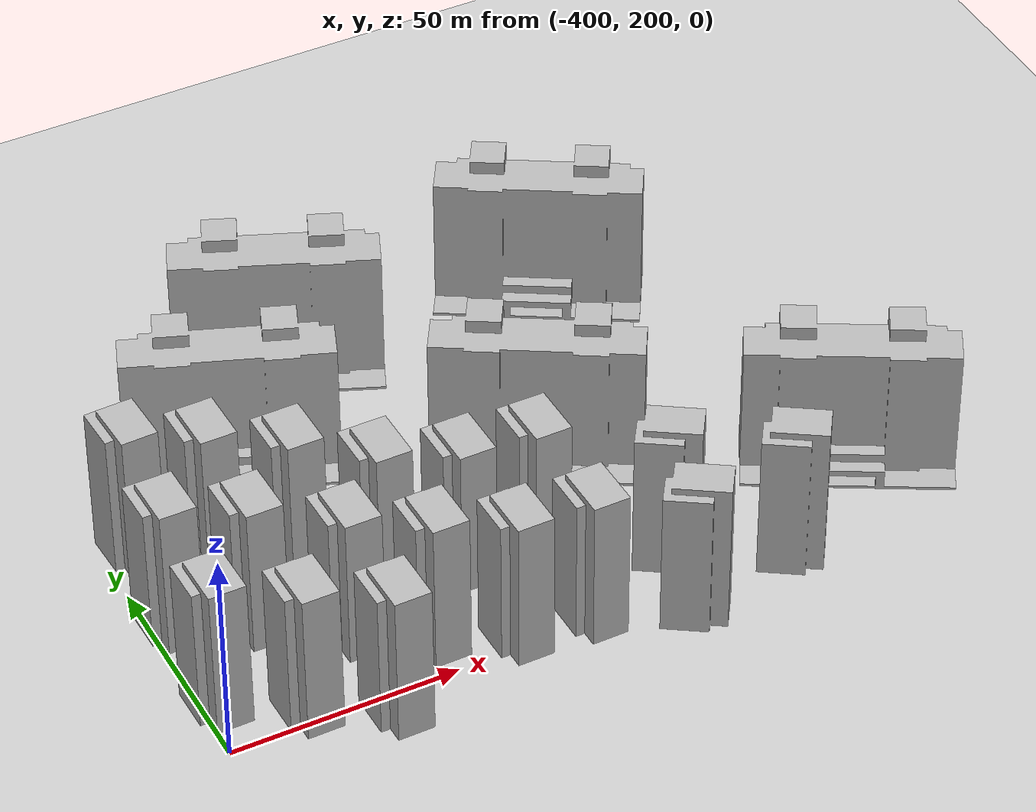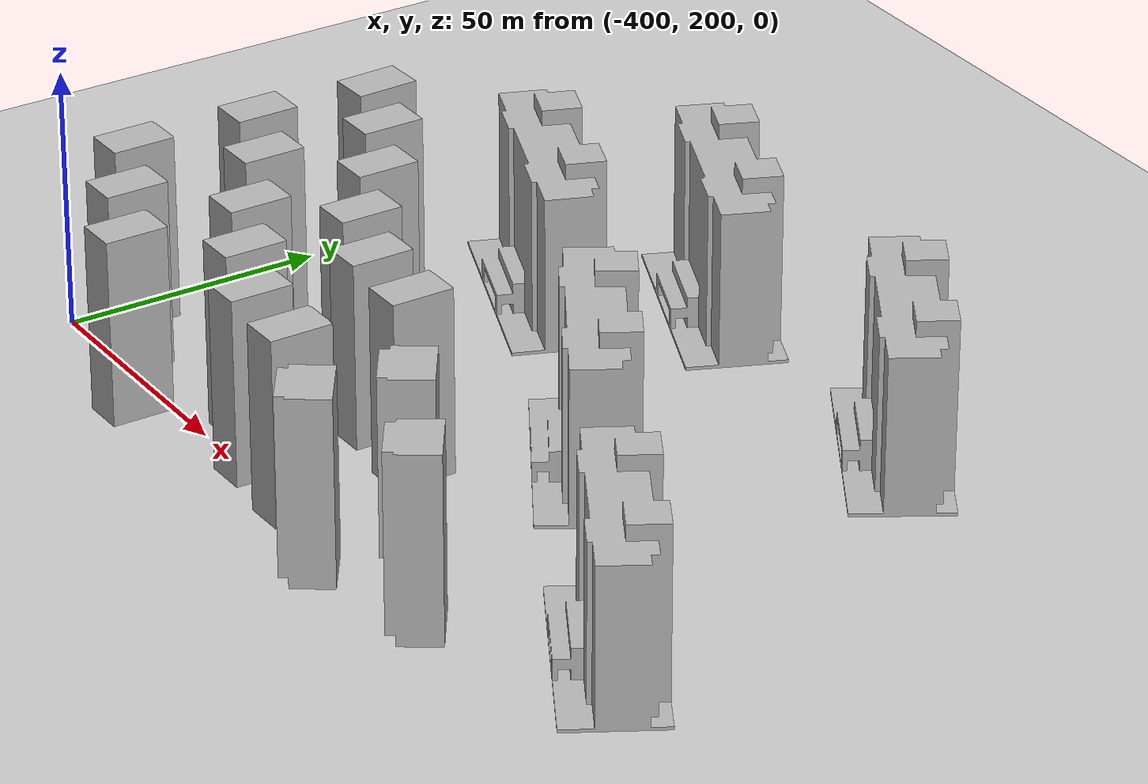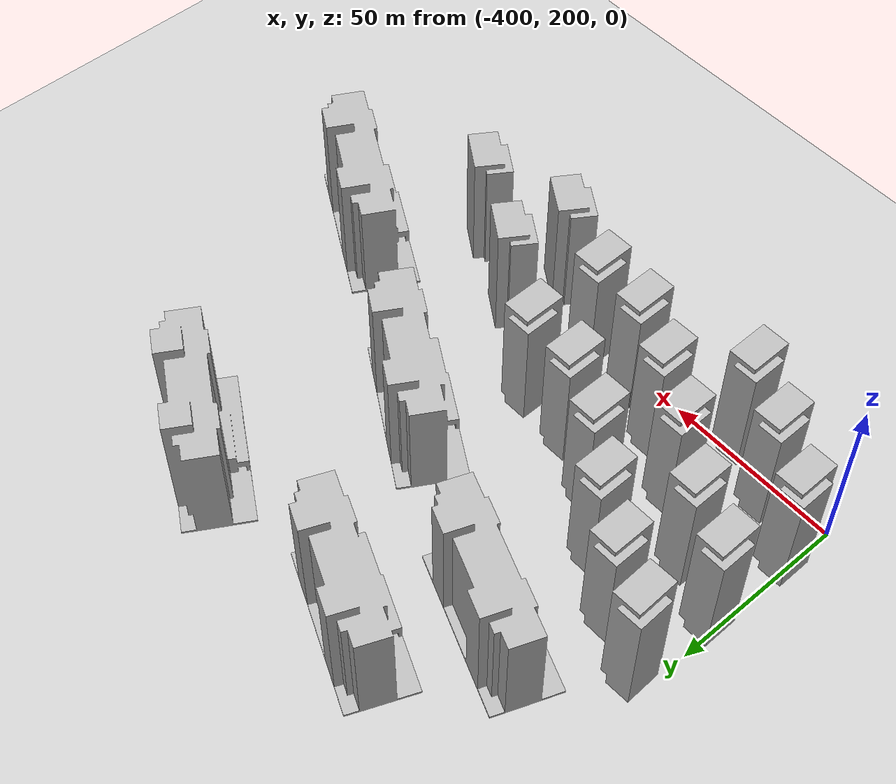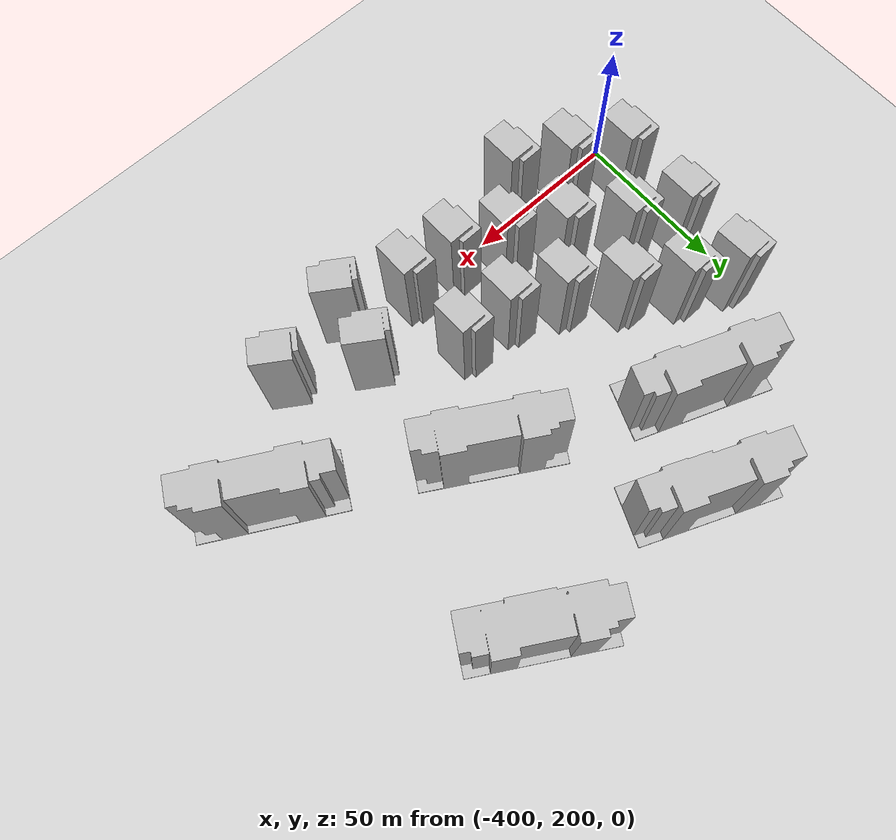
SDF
<sdf version="1.7">
 <world name="default">
  <model name="ground_plane">
   <static>1</static>
   <link name="link">
    <collision name="collision">
     <geometry><plane><normal>0 0 1</normal><size>100 100</size></plane></geometry>
     <surface><friction><ode><mu>100</mu><mu2>50</mu2></ode></friction></surface>
    </collision>
    <visual name="visual">
     <cast_shadows>0</cast_shadows>
     <geometry><plane><normal>0 0 1</normal><size>100 100</size></plane></geometry>
     <material>
      <script><uri>file://media/materials/scripts/gazebo.material</uri><name>Gazebo/Grey</name></script>
     </material>
    </visual>
   </link>
  </model>
  <model name="apartment0_clone_0">
   <static>1</static>
   <link name="link_0">
    <inertial>
     <mass>1</mass>
     <inertia>
      <ixx>0.166667</ixx>
      <ixy>0</ixy>
      <ixz>0</ixz>
      <iyy>0.166667</iyy>
      <iyz>0</iyz>
      <izz>0.166667</izz>
     </inertia>
    </inertial>
    <pose>0.000226 2e-06 0 0 -0 0</pose>
    <visual name="visual">
     <geometry>
      <mesh><uri>model://apartment0/scripts/apartment.dae</uri><scale>0.6 0.3 0.2</scale></mesh>
     </geometry>
     <material>
      <lighting>1</lighting>
      <script><uri>model://apartment0/scripts/building.jpg</uri><name>__default__</name></script>
      <shader type="pixel"/>
     </material>
    </visual>
    <collision name="collision">
     <geometry>
      <mesh><uri>model://apartment0/scripts/apartment.dae</uri><scale>0.6 0.3 0.2</scale></mesh>
     </geometry>
     <surface>
      <friction>
       <ode><mu>1</mu><mu2>1</mu2><fdir1>0 0 0</fdir1><slip1>0</slip1><slip2>0</slip2></ode>
       <torsional>
        <coefficient>1</coefficient>
        <patch_radius>0</patch_radius>
        <surface_radius>0</surface_radius>
        <use_patch_radius>1</use_patch_radius>
        <ode><slip>0</slip></ode>
       </torsional>
      </friction>
      <bounce><restitution_coefficient>0</restitution_coefficient><threshold>1e+06</threshold></bounce>
      <contact>
       <collide_without_contact>0</collide_without_contact>
       <collide_without_contact_bitmask>1</collide_without_contact_bitmask>
       <collide_bitmask>1</collide_bitmask>
       <ode>
        <soft_cfm>0</soft_cfm>
        <soft_erp>0.2</soft_erp>
        <kp>1e+13</kp>
        <kd>1</kd>
        <max_vel>0.01</max_vel>
        <min_depth>0</min_depth>
       </ode>
       <bullet>
        <split_impulse>1</split_impulse>
        <split_impulse_penetration_threshold>-0.01</split_impulse_penetration_threshold>
        <soft_cfm>0</soft_cfm>
        <soft_erp>0.2</soft_erp>
        <kp>1e+13</kp>
        <kd>1</kd>
       </bullet>
      </contact>
     </surface>
    </collision>
   </link>
   <static>0</static>
   <pose>-363.491 278.671 0.802359 0 0 -0.370451</pose>
  </model>
  <model name="apartment0_clone_1">
   <static>1</static>
   <link name="link_0">
    <inertial>
     <mass>1</mass>
     <inertia>
      <ixx>0.166667</ixx>
      <ixy>0</ixy>
      <ixz>0</ixz>
      <iyy>0.166667</iyy>
      <iyz>0</iyz>
      <izz>0.166667</izz>
     </inertia>
    </inertial>
    <pose>0.000226 2e-06 0 0 -0 0</pose>
    <visual name="visual">
     <geometry>
      <mesh><uri>model://apartment0/scripts/apartment.dae</uri><scale>0.6 0.3 0.2</scale></mesh>
     </geometry>
     <material>
      <lighting>1</lighting>
      <script><uri>model://apartment0/scripts/building.jpg</uri><name>__default__</name></script>
      <shader type="pixel"/>
     </material>
    </visual>
    <collision name="collision">
     <geometry>
      <mesh><uri>model://apartment0/scripts/apartment.dae</uri><scale>0.6 0.3 0.2</scale></mesh>
     </geometry>
     <surface>
      <friction>
       <ode><mu>1</mu><mu2>1</mu2><fdir1>0 0 0</fdir1><slip1>0</slip1><slip2>0</slip2></ode>
       <torsional>
        <coefficient>1</coefficient>
        <patch_radius>0</patch_radius>
        <surface_radius>0</surface_radius>
        <use_patch_radius>1</use_patch_radius>
        <ode><slip>0</slip></ode>
       </torsional>
      </friction>
      <bounce><restitution_coefficient>0</restitution_coefficient><threshold>1e+06</threshold></bounce>
      <contact>
       <collide_without_contact>0</collide_without_contact>
       <collide_without_contact_bitmask>1</collide_without_contact_bitmask>
       <collide_bitmask>1</collide_bitmask>
       <ode>
        <soft_cfm>0</soft_cfm>
        <soft_erp>0.2</soft_erp>
        <kp>1e+13</kp>
        <kd>1</kd>
        <max_vel>0.01</max_vel>
        <min_depth>0</min_depth>
       </ode>
       <bullet>
        <split_impulse>1</split_impulse>
        <split_impulse_penetration_threshold>-0.01</split_impulse_penetration_threshold>
        <soft_cfm>0</soft_cfm>
        <soft_erp>0.2</soft_erp>
        <kp>1e+13</kp>
        <kd>1</kd>
       </bullet>
      </contact>
     </surface>
    </collision>
   </link>
   <static>0</static>
   <pose>-341.755 302.564 0.802359 0 0 -0.400235</pose>
  </model>
  <model name="apartment0_clone_4">
   <static>1</static>
   <link name="link_0">
    <inertial>
     <mass>1</mass>
     <inertia>
      <ixx>0.166667</ixx>
      <ixy>0</ixy>
      <ixz>0</ixz>
      <iyy>0.166667</iyy>
      <iyz>0</iyz>
      <izz>0.166667</izz>
     </inertia>
    </inertial>
    <pose>0.000226 2e-06 0 0 -0 0</pose>
    <visual name="visual">
     <geometry>
      <mesh><uri>model://apartment0/scripts/apartment.dae</uri><scale>0.6 0.3 0.2</scale></mesh>
     </geometry>
     <material>
      <lighting>1</lighting>
      <script><uri>model://apartment0/scripts/building.jpg</uri><name>__default__</name></script>
      <shader type="pixel"/>
     </material>
    </visual>
    <collision name="collision">
     <geometry>
      <mesh><uri>model://apartment0/scripts/apartment.dae</uri><scale>0.6 0.3 0.2</scale></mesh>
     </geometry>
     <surface>
      <friction>
       <ode><mu>1</mu><mu2>1</mu2><fdir1>0 0 0</fdir1><slip1>0</slip1><slip2>0</slip2></ode>
       <torsional>
        <coefficient>1</coefficient>
        <patch_radius>0</patch_radius>
        <surface_radius>0</surface_radius>
        <use_patch_radius>1</use_patch_radius>
        <ode><slip>0</slip></ode>
       </torsional>
      </friction>
      <bounce><restitution_coefficient>0</restitution_coefficient><threshold>1e+06</threshold></bounce>
      <contact>
       <collide_without_contact>0</collide_without_contact>
       <collide_without_contact_bitmask>1</collide_without_contact_bitmask>
       <collide_bitmask>1</collide_bitmask>
       <ode>
        <soft_cfm>0</soft_cfm>
        <soft_erp>0.2</soft_erp>
        <kp>1e+13</kp>
        <kd>1</kd>
        <max_vel>0.01</max_vel>
        <min_depth>0</min_depth>
       </ode>
       <bullet>
        <split_impulse>1</split_impulse>
        <split_impulse_penetration_threshold>-0.01</split_impulse_penetration_threshold>
        <soft_cfm>0</soft_cfm>
        <soft_erp>0.2</soft_erp>
        <kp>1e+13</kp>
        <kd>1</kd>
       </bullet>
      </contact>
     </surface>
    </collision>
   </link>
   <static>0</static>
   <pose>-280.409 299.182 0.802359 0 0 -0.537389</pose>
  </model>
  <model name="apartment0_clone">
   <static>1</static>
   <link name="link_0">
    <inertial>
     <mass>1</mass>
     <inertia>
      <ixx>0.166667</ixx>
      <ixy>0</ixy>
      <ixz>0</ixz>
      <iyy>0.166667</iyy>
      <iyz>0</iyz>
      <izz>0.166667</izz>
     </inertia>
    </inertial>
    <pose>0.000226 2e-06 0 0 -0 0</pose>
    <visual name="visual">
     <geometry>
      <mesh><uri>model://apartment0/scripts/apartment.dae</uri><scale>0.6 0.3 0.2</scale></mesh>
     </geometry>
     <material>
      <lighting>1</lighting>
      <script><uri>model://apartment0/scripts/building.jpg</uri><name>__default__</name></script>
      <shader type="pixel"/>
     </material>
    </visual>
    <collision name="collision">
     <geometry>
      <mesh><uri>model://apartment0/scripts/apartment.dae</uri><scale>0.6 0.3 0.2</scale></mesh>
     </geometry>
     <surface>
      <friction>
       <ode><mu>1</mu><mu2>1</mu2><fdir1>0 0 0</fdir1><slip1>0</slip1><slip2>0</slip2></ode>
       <torsional>
        <coefficient>1</coefficient>
        <patch_radius>0</patch_radius>
        <surface_radius>0</surface_radius>
        <use_patch_radius>1</use_patch_radius>
        <ode><slip>0</slip></ode>
       </torsional>
      </friction>
      <bounce><restitution_coefficient>0</restitution_coefficient><threshold>1e+06</threshold></bounce>
      <contact>
       <collide_without_contact>0</collide_without_contact>
       <collide_without_contact_bitmask>1</collide_without_contact_bitmask>
       <collide_bitmask>1</collide_bitmask>
       <ode>
        <soft_cfm>0</soft_cfm>
        <soft_erp>0.2</soft_erp>
        <kp>1e+13</kp>
        <kd>1</kd>
        <max_vel>0.01</max_vel>
        <min_depth>0</min_depth>
       </ode>
       <bullet>
        <split_impulse>1</split_impulse>
        <split_impulse_penetration_threshold>-0.01</split_impulse_penetration_threshold>
        <soft_cfm>0</soft_cfm>
        <soft_erp>0.2</soft_erp>
        <kp>1e+13</kp>
        <kd>1</kd>
       </bullet>
      </contact>
     </surface>
    </collision>
   </link>
   <static>0</static>
   <pose>-248.904 220.04 0.802359 0 0 -0.510299</pose>
  </model>
  <model name="apartment1_1_clone_clone_2_clone_5_clone_4_clone_4_clone">
   <static>1</static>
   <link name="link_0">
    <inertial>
     <mass>1</mass>
     <inertia>
      <ixx>0.166667</ixx>
      <ixy>0</ixy>
      <ixz>0</ixz>
      <iyy>0.166667</iyy>
      <iyz>0</iyz>
      <izz>0.166667</izz>
     </inertia>
    </inertial>
    <pose>1e-06 -0 0 0 -0 0</pose>
    <visual name="visual">
     <geometry>
      <mesh><uri>model://apartment1/scripts/apartment1.dae</uri><scale>0.2 0.2 0.3</scale></mesh>
     </geometry>
     <material>
      <lighting>1</lighting>
      <script><uri>model://apartment1/scripts/apartment1.jpg</uri><name>__default__</name></script>
      <shader type="pixel"/>
     </material>
    </visual>
    <collision name="collision">
     <geometry>
      <mesh><uri>model://apartment1/scripts/apartment1.dae</uri><scale>0.2 0.2 0.3</scale></mesh>
     </geometry>
     <surface>
      <friction>
       <ode><mu>1</mu><mu2>1</mu2><fdir1>0 0 0</fdir1><slip1>0</slip1><slip2>0</slip2></ode>
       <torsional>
        <coefficient>1</coefficient>
        <patch_radius>0</patch_radius>
        <surface_radius>0</surface_radius>
        <use_patch_radius>1</use_patch_radius>
        <ode><slip>0</slip></ode>
       </torsional>
      </friction>
      <bounce><restitution_coefficient>0</restitution_coefficient><threshold>1e+06</threshold></bounce>
      <contact>
       <collide_without_contact>0</collide_without_contact>
       <collide_without_contact_bitmask>1</collide_without_contact_bitmask>
       <collide_bitmask>1</collide_bitmask>
       <ode>
        <soft_cfm>0</soft_cfm>
        <soft_erp>0.2</soft_erp>
        <kp>1e+13</kp>
        <kd>1</kd>
        <max_vel>0.01</max_vel>
        <min_depth>0</min_depth>
       </ode>
       <bullet>
        <split_impulse>1</split_impulse>
        <split_impulse_penetration_threshold>-0.01</split_impulse_penetration_threshold>
        <soft_cfm>0</soft_cfm>
        <soft_erp>0.2</soft_erp>
        <kp>1e+13</kp>
        <kd>1</kd>
       </bullet>
      </contact>
     </surface>
    </collision>
   </link>
   <static>0</static>
   <pose>-393.151 260.765 0 0 -0 0.036729</pose>
  </model>
  <model name="apartment1_1_clone_clone_2_clone_5_clone_4_clone_4_clone_clone">
   <static>1</static>
   <link name="link_0">
    <inertial>
     <mass>1</mass>
     <inertia>
      <ixx>0.166667</ixx>
      <ixy>0</ixy>
      <ixz>0</ixz>
      <iyy>0.166667</iyy>
      <iyz>0</iyz>
      <izz>0.166667</izz>
     </inertia>
    </inertial>
    <pose>1e-06 -0 0 0 -0 0</pose>
    <visual name="visual">
     <geometry>
      <mesh><uri>model://apartment1/scripts/apartment1.dae</uri><scale>0.2 0.2 0.3</scale></mesh>
     </geometry>
     <material>
      <lighting>1</lighting>
      <script><uri>model://apartment1/scripts/apartment1.jpg</uri><name>__default__</name></script>
      <shader type="pixel"/>
     </material>
    </visual>
    <collision name="collision">
     <geometry>
      <mesh><uri>model://apartment1/scripts/apartment1.dae</uri><scale>0.2 0.2 0.3</scale></mesh>
     </geometry>
     <surface>
      <friction>
       <ode><mu>1</mu><mu2>1</mu2><fdir1>0 0 0</fdir1><slip1>0</slip1><slip2>0</slip2></ode>
       <torsional>
        <coefficient>1</coefficient>
        <patch_radius>0</patch_radius>
        <surface_radius>0</surface_radius>
        <use_patch_radius>1</use_patch_radius>
        <ode><slip>0</slip></ode>
       </torsional>
      </friction>
      <bounce><restitution_coefficient>0</restitution_coefficient><threshold>1e+06</threshold></bounce>
      <contact>
       <collide_without_contact>0</collide_without_contact>
       <collide_without_contact_bitmask>1</collide_without_contact_bitmask>
       <collide_bitmask>1</collide_bitmask>
       <ode>
        <soft_cfm>0</soft_cfm>
        <soft_erp>0.2</soft_erp>
        <kp>1e+13</kp>
        <kd>1</kd>
        <max_vel>0.01</max_vel>
        <min_depth>0</min_depth>
       </ode>
       <bullet>
        <split_impulse>1</split_impulse>
        <split_impulse_penetration_threshold>-0.01</split_impulse_penetration_threshold>
        <soft_cfm>0</soft_cfm>
        <soft_erp>0.2</soft_erp>
        <kp>1e+13</kp>
        <kd>1</kd>
       </bullet>
      </contact>
     </surface>
    </collision>
   </link>
   <static>0</static>
   <pose>-395.285 236.969 0 0 -0 0.008849</pose>
  </model>
  <model name="apartment1_1_clone_clone_2_clone_5_clone_4_clone_4_clone_clone_0">
   <static>1</static>
   <link name="link_0">
    <inertial>
     <mass>1</mass>
     <inertia>
      <ixx>0.166667</ixx>
      <ixy>0</ixy>
      <ixz>0</ixz>
      <iyy>0.166667</iyy>
      <iyz>0</iyz>
      <izz>0.166667</izz>
     </inertia>
    </inertial>
    <pose>1e-06 -0 0 0 -0 0</pose>
    <visual name="visual">
     <geometry>
      <mesh><uri>model://apartment1/scripts/apartment1.dae</uri><scale>0.2 0.2 0.3</scale></mesh>
     </geometry>
     <material>
      <lighting>1</lighting>
      <script><uri>model://apartment1/scripts/apartment1.jpg</uri><name>__default__</name></script>
      <shader type="pixel"/>
     </material>
    </visual>
    <collision name="collision">
     <geometry>
      <mesh><uri>model://apartment1/scripts/apartment1.dae</uri><scale>0.2 0.2 0.3</scale></mesh>
     </geometry>
     <surface>
      <friction>
       <ode><mu>1</mu><mu2>1</mu2><fdir1>0 0 0</fdir1><slip1>0</slip1><slip2>0</slip2></ode>
       <torsional>
        <coefficient>1</coefficient>
        <patch_radius>0</patch_radius>
        <surface_radius>0</surface_radius>
        <use_patch_radius>1</use_patch_radius>
        <ode><slip>0</slip></ode>
       </torsional>
      </friction>
      <bounce><restitution_coefficient>0</restitution_coefficient><threshold>1e+06</threshold></bounce>
      <contact>
       <collide_without_contact>0</collide_without_contact>
       <collide_without_contact_bitmask>1</collide_without_contact_bitmask>
       <collide_bitmask>1</collide_bitmask>
       <ode>
        <soft_cfm>0</soft_cfm>
        <soft_erp>0.2</soft_erp>
        <kp>1e+13</kp>
        <kd>1</kd>
        <max_vel>0.01</max_vel>
        <min_depth>0</min_depth>
       </ode>
       <bullet>
        <split_impulse>1</split_impulse>
        <split_impulse_penetration_threshold>-0.01</split_impulse_penetration_threshold>
        <soft_cfm>0</soft_cfm>
        <soft_erp>0.2</soft_erp>
        <kp>1e+13</kp>
        <kd>1</kd>
       </bullet>
      </contact>
     </surface>
    </collision>
   </link>
   <static>0</static>
   <pose>-396.085 211.967 0 0 -0 0.008849</pose>
  </model>
  <model name="apartment1_1_clone_clone_2_clone_5_clone_4_clone_4_clone_clone_1">
   <static>1</static>
   <link name="link_0">
    <inertial>
     <mass>1</mass>
     <inertia>
      <ixx>0.166667</ixx>
      <ixy>0</ixy>
      <ixz>0</ixz>
      <iyy>0.166667</iyy>
      <iyz>0</iyz>
      <izz>0.166667</izz>
     </inertia>
    </inertial>
    <pose>1e-06 -0 0 0 -0 0</pose>
    <visual name="visual">
     <geometry>
      <mesh><uri>model://apartment1/scripts/apartment1.dae</uri><scale>0.2 0.2 0.3</scale></mesh>
     </geometry>
     <material>
      <lighting>1</lighting>
      <script><uri>model://apartment1/scripts/apartment1.jpg</uri><name>__default__</name></script>
      <shader type="pixel"/>
     </material>
    </visual>
    <collision name="collision">
     <geometry>
      <mesh><uri>model://apartment1/scripts/apartment1.dae</uri><scale>0.2 0.2 0.3</scale></mesh>
     </geometry>
     <surface>
      <friction>
       <ode><mu>1</mu><mu2>1</mu2><fdir1>0 0 0</fdir1><slip1>0</slip1><slip2>0</slip2></ode>
       <torsional>
        <coefficient>1</coefficient>
        <patch_radius>0</patch_radius>
        <surface_radius>0</surface_radius>
        <use_patch_radius>1</use_patch_radius>
        <ode><slip>0</slip></ode>
       </torsional>
      </friction>
      <bounce><restitution_coefficient>0</restitution_coefficient><threshold>1e+06</threshold></bounce>
      <contact>
       <collide_without_contact>0</collide_without_contact>
       <collide_without_contact_bitmask>1</collide_without_contact_bitmask>
       <collide_bitmask>1</collide_bitmask>
       <ode>
        <soft_cfm>0</soft_cfm>
        <soft_erp>0.2</soft_erp>
        <kp>1e+13</kp>
        <kd>1</kd>
        <max_vel>0.01</max_vel>
        <min_depth>0</min_depth>
       </ode>
       <bullet>
        <split_impulse>1</split_impulse>
        <split_impulse_penetration_threshold>-0.01</split_impulse_penetration_threshold>
        <soft_cfm>0</soft_cfm>
        <soft_erp>0.2</soft_erp>
        <kp>1e+13</kp>
        <kd>1</kd>
       </bullet>
      </contact>
     </surface>
    </collision>
   </link>
   <static>0</static>
   <pose>-379.013 253.689 0 0 -0 0.008849</pose>
  </model>
  <model name="apartment1_1_clone_clone_2_clone_5_clone_4_clone_4_clone_clone_1_clone">
   <static>1</static>
   <link name="link_0">
    <inertial>
     <mass>1</mass>
     <inertia>
      <ixx>0.166667</ixx>
      <ixy>0</ixy>
      <ixz>0</ixz>
      <iyy>0.166667</iyy>
      <iyz>0</iyz>
      <izz>0.166667</izz>
     </inertia>
    </inertial>
    <pose>1e-06 -0 0 0 -0 0</pose>
    <visual name="visual">
     <geometry>
      <mesh><uri>model://apartment1/scripts/apartment1.dae</uri><scale>0.2 0.2 0.3</scale></mesh>
     </geometry>
     <material>
      <lighting>1</lighting>
      <script><uri>model://apartment1/scripts/apartment1.jpg</uri><name>__default__</name></script>
      <shader type="pixel"/>
     </material>
    </visual>
    <collision name="collision">
     <geometry>
      <mesh><uri>model://apartment1/scripts/apartment1.dae</uri><scale>0.2 0.2 0.3</scale></mesh>
     </geometry>
     <surface>
      <friction>
       <ode><mu>1</mu><mu2>1</mu2><fdir1>0 0 0</fdir1><slip1>0</slip1><slip2>0</slip2></ode>
       <torsional>
        <coefficient>1</coefficient>
        <patch_radius>0</patch_radius>
        <surface_radius>0</surface_radius>
        <use_patch_radius>1</use_patch_radius>
        <ode><slip>0</slip></ode>
       </torsional>
      </friction>
      <bounce><restitution_coefficient>0</restitution_coefficient><threshold>1e+06</threshold></bounce>
      <contact>
       <collide_without_contact>0</collide_without_contact>
       <collide_without_contact_bitmask>1</collide_without_contact_bitmask>
       <collide_bitmask>1</collide_bitmask>
       <ode>
        <soft_cfm>0</soft_cfm>
        <soft_erp>0.2</soft_erp>
        <kp>1e+13</kp>
        <kd>1</kd>
        <max_vel>0.01</max_vel>
        <min_depth>0</min_depth>
       </ode>
       <bullet>
        <split_impulse>1</split_impulse>
        <split_impulse_penetration_threshold>-0.01</split_impulse_penetration_threshold>
        <soft_cfm>0</soft_cfm>
        <soft_erp>0.2</soft_erp>
        <kp>1e+13</kp>
        <kd>1</kd>
       </bullet>
      </contact>
     </surface>
    </collision>
   </link>
   <static>0</static>
   <pose>-380.093 229.665 0 0 -0 0.008849</pose>
  </model>
  <model name="apartment1_1_clone_clone_2_clone_5_clone_4_clone_4_clone_clone_1_clone_0">
   <static>1</static>
   <link name="link_0">
    <inertial>
     <mass>1</mass>
     <inertia>
      <ixx>0.166667</ixx>
      <ixy>0</ixy>
      <ixz>0</ixz>
      <iyy>0.166667</iyy>
      <iyz>0</iyz>
      <izz>0.166667</izz>
     </inertia>
    </inertial>
    <pose>1e-06 -0 0 0 -0 0</pose>
    <visual name="visual">
     <geometry>
      <mesh><uri>model://apartment1/scripts/apartment1.dae</uri><scale>0.2 0.2 0.3</scale></mesh>
     </geometry>
     <material>
      <lighting>1</lighting>
      <script><uri>model://apartment1/scripts/apartment1.jpg</uri><name>__default__</name></script>
      <shader type="pixel"/>
     </material>
    </visual>
    <collision name="collision">
     <geometry>
      <mesh><uri>model://apartment1/scripts/apartment1.dae</uri><scale>0.2 0.2 0.3</scale></mesh>
     </geometry>
     <surface>
      <friction>
       <ode><mu>1</mu><mu2>1</mu2><fdir1>0 0 0</fdir1><slip1>0</slip1><slip2>0</slip2></ode>
       <torsional>
        <coefficient>1</coefficient>
        <patch_radius>0</patch_radius>
        <surface_radius>0</surface_radius>
        <use_patch_radius>1</use_patch_radius>
        <ode><slip>0</slip></ode>
       </torsional>
      </friction>
      <bounce><restitution_coefficient>0</restitution_coefficient><threshold>1e+06</threshold></bounce>
      <contact>
       <collide_without_contact>0</collide_without_contact>
       <collide_without_contact_bitmask>1</collide_without_contact_bitmask>
       <collide_bitmask>1</collide_bitmask>
       <ode>
        <soft_cfm>0</soft_cfm>
        <soft_erp>0.2</soft_erp>
        <kp>1e+13</kp>
        <kd>1</kd>
        <max_vel>0.01</max_vel>
        <min_depth>0</min_depth>
       </ode>
       <bullet>
        <split_impulse>1</split_impulse>
        <split_impulse_penetration_threshold>-0.01</split_impulse_penetration_threshold>
        <soft_cfm>0</soft_cfm>
        <soft_erp>0.2</soft_erp>
        <kp>1e+13</kp>
        <kd>1</kd>
       </bullet>
      </contact>
     </surface>
    </collision>
   </link>
   <static>0</static>
   <pose>-380.949 202.447 0 0 -0 0.008849</pose>
  </model>
  <model name="apartment1_1_clone_clone_2_clone_5_clone_4_clone_4_clone_clone_1_clone_1">
   <static>1</static>
   <link name="link_0">
    <inertial>
     <mass>1</mass>
     <inertia>
      <ixx>0.166667</ixx>
      <ixy>0</ixy>
      <ixz>0</ixz>
      <iyy>0.166667</iyy>
      <iyz>0</iyz>
      <izz>0.166667</izz>
     </inertia>
    </inertial>
    <pose>1e-06 -0 0 0 -0 0</pose>
    <visual name="visual">
     <geometry>
      <mesh><uri>model://apartment1/scripts/apartment1.dae</uri><scale>0.2 0.2 0.3</scale></mesh>
     </geometry>
     <material>
      <lighting>1</lighting>
      <script><uri>model://apartment1/scripts/apartment1.jpg</uri><name>__default__</name></script>
      <shader type="pixel"/>
     </material>
    </visual>
    <collision name="collision">
     <geometry>
      <mesh><uri>model://apartment1/scripts/apartment1.dae</uri><scale>0.2 0.2 0.3</scale></mesh>
     </geometry>
     <surface>
      <friction>
       <ode><mu>1</mu><mu2>1</mu2><fdir1>0 0 0</fdir1><slip1>0</slip1><slip2>0</slip2></ode>
       <torsional>
        <coefficient>1</coefficient>
        <patch_radius>0</patch_radius>
        <surface_radius>0</surface_radius>
        <use_patch_radius>1</use_patch_radius>
        <ode><slip>0</slip></ode>
       </torsional>
      </friction>
      <bounce><restitution_coefficient>0</restitution_coefficient><threshold>1e+06</threshold></bounce>
      <contact>
       <collide_without_contact>0</collide_without_contact>
       <collide_without_contact_bitmask>1</collide_without_contact_bitmask>
       <collide_bitmask>1</collide_bitmask>
       <ode>
        <soft_cfm>0</soft_cfm>
        <soft_erp>0.2</soft_erp>
        <kp>1e+13</kp>
        <kd>1</kd>
        <max_vel>0.01</max_vel>
        <min_depth>0</min_depth>
       </ode>
       <bullet>
        <split_impulse>1</split_impulse>
        <split_impulse_penetration_threshold>-0.01</split_impulse_penetration_threshold>
        <soft_cfm>0</soft_cfm>
        <soft_erp>0.2</soft_erp>
        <kp>1e+13</kp>
        <kd>1</kd>
       </bullet>
      </contact>
     </surface>
    </collision>
   </link>
   <static>0</static>
   <pose>-364.488 244.044 0 0 -0 0.008849</pose>
  </model>
  <model name="apartment1_1_clone_clone_2_clone_5_clone_4_clone_4_clone_clone_1_clone_2">
   <static>1</static>
   <link name="link_0">
    <inertial>
     <mass>1</mass>
     <inertia>
      <ixx>0.166667</ixx>
      <ixy>0</ixy>
      <ixz>0</ixz>
      <iyy>0.166667</iyy>
      <iyz>0</iyz>
      <izz>0.166667</izz>
     </inertia>
    </inertial>
    <pose>1e-06 -0 0 0 -0 0</pose>
    <visual name="visual">
     <geometry>
      <mesh><uri>model://apartment1/scripts/apartment1.dae</uri><scale>0.2 0.2 0.3</scale></mesh>
     </geometry>
     <material>
      <lighting>1</lighting>
      <script><uri>model://apartment1/scripts/apartment1.jpg</uri><name>__default__</name></script>
      <shader type="pixel"/>
     </material>
    </visual>
    <collision name="collision">
     <geometry>
      <mesh><uri>model://apartment1/scripts/apartment1.dae</uri><scale>0.2 0.2 0.3</scale></mesh>
     </geometry>
     <surface>
      <friction>
       <ode><mu>1</mu><mu2>1</mu2><fdir1>0 0 0</fdir1><slip1>0</slip1><slip2>0</slip2></ode>
       <torsional>
        <coefficient>1</coefficient>
        <patch_radius>0</patch_radius>
        <surface_radius>0</surface_radius>
        <use_patch_radius>1</use_patch_radius>
        <ode><slip>0</slip></ode>
       </torsional>
      </friction>
      <bounce><restitution_coefficient>0</restitution_coefficient><threshold>1e+06</threshold></bounce>
      <contact>
       <collide_without_contact>0</collide_without_contact>
       <collide_without_contact_bitmask>1</collide_without_contact_bitmask>
       <collide_bitmask>1</collide_bitmask>
       <ode>
        <soft_cfm>0</soft_cfm>
        <soft_erp>0.2</soft_erp>
        <kp>1e+13</kp>
        <kd>1</kd>
        <max_vel>0.01</max_vel>
        <min_depth>0</min_depth>
       </ode>
       <bullet>
        <split_impulse>1</split_impulse>
        <split_impulse_penetration_threshold>-0.01</split_impulse_penetration_threshold>
        <soft_cfm>0</soft_cfm>
        <soft_erp>0.2</soft_erp>
        <kp>1e+13</kp>
        <kd>1</kd>
       </bullet>
      </contact>
     </surface>
    </collision>
   </link>
   <static>0</static>
   <pose>-364.394 218.011 0 0 -0 0.008849</pose>
  </model>
  <model name="apartment1_1_clone_clone_2_clone_5_clone_4_clone_4_clone_clone_1_clone_3">
   <static>1</static>
   <link name="link_0">
    <inertial>
     <mass>1</mass>
     <inertia>
      <ixx>0.166667</ixx>
      <ixy>0</ixy>
      <ixz>0</ixz>
      <iyy>0.166667</iyy>
      <iyz>0</iyz>
      <izz>0.166667</izz>
     </inertia>
    </inertial>
    <pose>1e-06 -0 0 0 -0 0</pose>
    <visual name="visual">
     <geometry>
      <mesh><uri>model://apartment1/scripts/apartment1.dae</uri><scale>0.2 0.2 0.3</scale></mesh>
     </geometry>
     <material>
      <lighting>1</lighting>
      <script><uri>model://apartment1/scripts/apartment1.jpg</uri><name>__default__</name></script>
      <shader type="pixel"/>
     </material>
    </visual>
    <collision name="collision">
     <geometry>
      <mesh><uri>model://apartment1/scripts/apartment1.dae</uri><scale>0.2 0.2 0.3</scale></mesh>
     </geometry>
     <surface>
      <friction>
       <ode><mu>1</mu><mu2>1</mu2><fdir1>0 0 0</fdir1><slip1>0</slip1><slip2>0</slip2></ode>
       <torsional>
        <coefficient>1</coefficient>
        <patch_radius>0</patch_radius>
        <surface_radius>0</surface_radius>
        <use_patch_radius>1</use_patch_radius>
        <ode><slip>0</slip></ode>
       </torsional>
      </friction>
      <bounce><restitution_coefficient>0</restitution_coefficient><threshold>1e+06</threshold></bounce>
      <contact>
       <collide_without_contact>0</collide_without_contact>
       <collide_without_contact_bitmask>1</collide_without_contact_bitmask>
       <collide_bitmask>1</collide_bitmask>
       <ode>
        <soft_cfm>0</soft_cfm>
        <soft_erp>0.2</soft_erp>
        <kp>1e+13</kp>
        <kd>1</kd>
        <max_vel>0.01</max_vel>
        <min_depth>0</min_depth>
       </ode>
       <bullet>
        <split_impulse>1</split_impulse>
        <split_impulse_penetration_threshold>-0.01</split_impulse_penetration_threshold>
        <soft_cfm>0</soft_cfm>
        <soft_erp>0.2</soft_erp>
        <kp>1e+13</kp>
        <kd>1</kd>
       </bullet>
      </contact>
     </surface>
    </collision>
   </link>
   <static>0</static>
   <pose>-365.488 193.945 0 0 -0 0.008849</pose>
  </model>
  <model name="apartment1_1_clone_clone_2_clone_5_clone_4_clone_4_clone_clone_1_clone_5">
   <static>1</static>
   <link name="link_0">
    <inertial>
     <mass>1</mass>
     <inertia>
      <ixx>0.166667</ixx>
      <ixy>0</ixy>
      <ixz>0</ixz>
      <iyy>0.166667</iyy>
      <iyz>0</iyz>
      <izz>0.166667</izz>
     </inertia>
    </inertial>
    <pose>1e-06 -0 0 0 -0 0</pose>
    <visual name="visual">
     <geometry>
      <mesh><uri>model://apartment1/scripts/apartment1.dae</uri><scale>0.2 0.2 0.3</scale></mesh>
     </geometry>
     <material>
      <lighting>1</lighting>
      <script><uri>model://apartment1/scripts/apartment1.jpg</uri><name>__default__</name></script>
      <shader type="pixel"/>
     </material>
    </visual>
    <collision name="collision">
     <geometry>
      <mesh><uri>model://apartment1/scripts/apartment1.dae</uri><scale>0.2 0.2 0.3</scale></mesh>
     </geometry>
     <surface>
      <friction>
       <ode><mu>1</mu><mu2>1</mu2><fdir1>0 0 0</fdir1><slip1>0</slip1><slip2>0</slip2></ode>
       <torsional>
        <coefficient>1</coefficient>
        <patch_radius>0</patch_radius>
        <surface_radius>0</surface_radius>
        <use_patch_radius>1</use_patch_radius>
        <ode><slip>0</slip></ode>
       </torsional>
      </friction>
      <bounce><restitution_coefficient>0</restitution_coefficient><threshold>1e+06</threshold></bounce>
      <contact>
       <collide_without_contact>0</collide_without_contact>
       <collide_without_contact_bitmask>1</collide_without_contact_bitmask>
       <collide_bitmask>1</collide_bitmask>
       <ode>
        <soft_cfm>0</soft_cfm>
        <soft_erp>0.2</soft_erp>
        <kp>1e+13</kp>
        <kd>1</kd>
        <max_vel>0.01</max_vel>
        <min_depth>0</min_depth>
       </ode>
       <bullet>
        <split_impulse>1</split_impulse>
        <split_impulse_penetration_threshold>-0.01</split_impulse_penetration_threshold>
        <soft_cfm>0</soft_cfm>
        <soft_erp>0.2</soft_erp>
        <kp>1e+13</kp>
        <kd>1</kd>
       </bullet>
      </contact>
     </surface>
    </collision>
   </link>
   <static>0</static>
   <pose>-349.922 208.825 0 0 -0 0.008849</pose>
  </model>
  <model name="apartment1_1_clone_clone_2_clone_5_clone_4_clone_4_clone_clone_1_clone_6">
   <static>1</static>
   <link name="link_0">
    <inertial>
     <mass>1</mass>
     <inertia>
      <ixx>0.166667</ixx>
      <ixy>0</ixy>
      <ixz>0</ixz>
      <iyy>0.166667</iyy>
      <iyz>0</iyz>
      <izz>0.166667</izz>
     </inertia>
    </inertial>
    <pose>1e-06 -0 0 0 -0 0</pose>
    <visual name="visual">
     <geometry>
      <mesh><uri>model://apartment1/scripts/apartment1.dae</uri><scale>0.2 0.2 0.3</scale></mesh>
     </geometry>
     <material>
      <lighting>1</lighting>
      <script><uri>model://apartment1/scripts/apartment1.jpg</uri><name>__default__</name></script>
      <shader type="pixel"/>
     </material>
    </visual>
    <collision name="collision">
     <geometry>
      <mesh><uri>model://apartment1/scripts/apartment1.dae</uri><scale>0.2 0.2 0.3</scale></mesh>
     </geometry>
     <surface>
      <friction>
       <ode><mu>1</mu><mu2>1</mu2><fdir1>0 0 0</fdir1><slip1>0</slip1><slip2>0</slip2></ode>
       <torsional>
        <coefficient>1</coefficient>
        <patch_radius>0</patch_radius>
        <surface_radius>0</surface_radius>
        <use_patch_radius>1</use_patch_radius>
        <ode><slip>0</slip></ode>
       </torsional>
      </friction>
      <bounce><restitution_coefficient>0</restitution_coefficient><threshold>1e+06</threshold></bounce>
      <contact>
       <collide_without_contact>0</collide_without_contact>
       <collide_without_contact_bitmask>1</collide_without_contact_bitmask>
       <collide_bitmask>1</collide_bitmask>
       <ode>
        <soft_cfm>0</soft_cfm>
        <soft_erp>0.2</soft_erp>
        <kp>1e+13</kp>
        <kd>1</kd>
        <max_vel>0.01</max_vel>
        <min_depth>0</min_depth>
       </ode>
       <bullet>
        <split_impulse>1</split_impulse>
        <split_impulse_penetration_threshold>-0.01</split_impulse_penetration_threshold>
        <soft_cfm>0</soft_cfm>
        <soft_erp>0.2</soft_erp>
        <kp>1e+13</kp>
        <kd>1</kd>
       </bullet>
      </contact>
     </surface>
    </collision>
   </link>
   <static>0</static>
   <pose>-350.626 232.455 0 0 -0 0.008849</pose>
  </model>
  <model name="apartment1_1_clone_clone_2_clone_5_clone_4_clone_4_clone_clone_1_clone_6_clone">
   <static>1</static>
   <link name="link_0">
    <inertial>
     <mass>1</mass>
     <inertia>
      <ixx>0.166667</ixx>
      <ixy>0</ixy>
      <ixz>0</ixz>
      <iyy>0.166667</iyy>
      <iyz>0</iyz>
      <izz>0.166667</izz>
     </inertia>
    </inertial>
    <pose>1e-06 -0 0 0 -0 0</pose>
    <visual name="visual">
     <geometry>
      <mesh><uri>model://apartment1/scripts/apartment1.dae</uri><scale>0.2 0.2 0.3</scale></mesh>
     </geometry>
     <material>
      <lighting>1</lighting>
      <script><uri>model://apartment1/scripts/apartment1.jpg</uri><name>__default__</name></script>
      <shader type="pixel"/>
     </material>
    </visual>
    <collision name="collision">
     <geometry>
      <mesh><uri>model://apartment1/scripts/apartment1.dae</uri><scale>0.2 0.2 0.3</scale></mesh>
     </geometry>
     <surface>
      <friction>
       <ode><mu>1</mu><mu2>1</mu2><fdir1>0 0 0</fdir1><slip1>0</slip1><slip2>0</slip2></ode>
       <torsional>
        <coefficient>1</coefficient>
        <patch_radius>0</patch_radius>
        <surface_radius>0</surface_radius>
        <use_patch_radius>1</use_patch_radius>
        <ode><slip>0</slip></ode>
       </torsional>
      </friction>
      <bounce><restitution_coefficient>0</restitution_coefficient><threshold>1e+06</threshold></bounce>
      <contact>
       <collide_without_contact>0</collide_without_contact>
       <collide_without_contact_bitmask>1</collide_without_contact_bitmask>
       <collide_bitmask>1</collide_bitmask>
       <ode>
        <soft_cfm>0</soft_cfm>
        <soft_erp>0.2</soft_erp>
        <kp>1e+13</kp>
        <kd>1</kd>
        <max_vel>0.01</max_vel>
        <min_depth>0</min_depth>
       </ode>
       <bullet>
        <split_impulse>1</split_impulse>
        <split_impulse_penetration_threshold>-0.01</split_impulse_penetration_threshold>
        <soft_cfm>0</soft_cfm>
        <soft_erp>0.2</soft_erp>
        <kp>1e+13</kp>
        <kd>1</kd>
       </bullet>
      </contact>
     </surface>
    </collision>
   </link>
   <static>0</static>
   <pose>-335.51 225.7 0 0 -0 0.008849</pose>
  </model>
  <model name="apartment1_1_clone_clone_2_clone_5_clone_4_clone_4_clone_clone_1_clone_6_clone_0">
   <static>1</static>
   <link name="link_0">
    <inertial>
     <mass>1</mass>
     <inertia>
      <ixx>0.166667</ixx>
      <ixy>0</ixy>
      <ixz>0</ixz>
      <iyy>0.166667</iyy>
      <iyz>0</iyz>
      <izz>0.166667</izz>
     </inertia>
    </inertial>
    <pose>1e-06 -0 0 0 -0 0</pose>
    <visual name="visual">
     <geometry>
      <mesh><uri>model://apartment1/scripts/apartment1.dae</uri><scale>0.2 0.2 0.3</scale></mesh>
     </geometry>
     <material>
      <lighting>1</lighting>
      <script><uri>model://apartment1/scripts/apartment1.jpg</uri><name>__default__</name></script>
      <shader type="pixel"/>
     </material>
    </visual>
    <collision name="collision">
     <geometry>
      <mesh><uri>model://apartment1/scripts/apartment1.dae</uri><scale>0.2 0.2 0.3</scale></mesh>
     </geometry>
     <surface>
      <friction>
       <ode><mu>1</mu><mu2>1</mu2><fdir1>0 0 0</fdir1><slip1>0</slip1><slip2>0</slip2></ode>
       <torsional>
        <coefficient>1</coefficient>
        <patch_radius>0</patch_radius>
        <surface_radius>0</surface_radius>
        <use_patch_radius>1</use_patch_radius>
        <ode><slip>0</slip></ode>
       </torsional>
      </friction>
      <bounce><restitution_coefficient>0</restitution_coefficient><threshold>1e+06</threshold></bounce>
      <contact>
       <collide_without_contact>0</collide_without_contact>
       <collide_without_contact_bitmask>1</collide_without_contact_bitmask>
       <collide_bitmask>1</collide_bitmask>
       <ode>
        <soft_cfm>0</soft_cfm>
        <soft_erp>0.2</soft_erp>
        <kp>1e+13</kp>
        <kd>1</kd>
        <max_vel>0.01</max_vel>
        <min_depth>0</min_depth>
       </ode>
       <bullet>
        <split_impulse>1</split_impulse>
        <split_impulse_penetration_threshold>-0.01</split_impulse_penetration_threshold>
        <soft_cfm>0</soft_cfm>
        <soft_erp>0.2</soft_erp>
        <kp>1e+13</kp>
        <kd>1</kd>
       </bullet>
      </contact>
     </surface>
    </collision>
   </link>
   <static>0</static>
   <pose>-335.082 201.616 0 0 -0 0.008849</pose>
  </model>
  <model name="apartment1_1_clone_clone_2_clone_5_clone_4_clone_4_clone_clone_1_clone_6_clone_2">
   <static>1</static>
   <link name="link_0">
    <inertial>
     <mass>1</mass>
     <inertia>
      <ixx>0.166667</ixx>
      <ixy>0</ixy>
      <ixz>0</ixz>
      <iyy>0.166667</iyy>
      <iyz>0</iyz>
      <izz>0.166667</izz>
     </inertia>
    </inertial>
    <pose>1e-06 -0 0 0 -0 0</pose>
    <visual name="visual">
     <geometry>
      <mesh><uri>model://apartment1/scripts/apartment1.dae</uri><scale>0.2 0.2 0.3</scale></mesh>
     </geometry>
     <material>
      <lighting>1</lighting>
      <script><uri>model://apartment1/scripts/apartment1.jpg</uri><name>__default__</name></script>
      <shader type="pixel"/>
     </material>
    </visual>
    <collision name="collision">
     <geometry>
      <mesh><uri>model://apartment1/scripts/apartment1.dae</uri><scale>0.2 0.2 0.3</scale></mesh>
     </geometry>
     <surface>
      <friction>
       <ode><mu>1</mu><mu2>1</mu2><fdir1>0 0 0</fdir1><slip1>0</slip1><slip2>0</slip2></ode>
       <torsional>
        <coefficient>1</coefficient>
        <patch_radius>0</patch_radius>
        <surface_radius>0</surface_radius>
        <use_patch_radius>1</use_patch_radius>
        <ode><slip>0</slip></ode>
       </torsional>
      </friction>
      <bounce><restitution_coefficient>0</restitution_coefficient><threshold>1e+06</threshold></bounce>
      <contact>
       <collide_without_contact>0</collide_without_contact>
       <collide_without_contact_bitmask>1</collide_without_contact_bitmask>
       <collide_bitmask>1</collide_bitmask>
       <ode>
        <soft_cfm>0</soft_cfm>
        <soft_erp>0.2</soft_erp>
        <kp>1e+13</kp>
        <kd>1</kd>
        <max_vel>0.01</max_vel>
        <min_depth>0</min_depth>
       </ode>
       <bullet>
        <split_impulse>1</split_impulse>
        <split_impulse_penetration_threshold>-0.01</split_impulse_penetration_threshold>
        <soft_cfm>0</soft_cfm>
        <soft_erp>0.2</soft_erp>
        <kp>1e+13</kp>
        <kd>1</kd>
       </bullet>
      </contact>
     </surface>
    </collision>
   </link>
   <static>0</static>
   <pose>-319.372 224.088 0 0 -0 0.008849</pose>
  </model>
  <model name="apartment1_1_clone_clone_2_clone_5_clone_4_clone_4_clone_clone_1_clone_6_clone_3">
   <static>1</static>
   <link name="link_0">
    <inertial>
     <mass>1</mass>
     <inertia>
      <ixx>0.166667</ixx>
      <ixy>0</ixy>
      <ixz>0</ixz>
      <iyy>0.166667</iyy>
      <iyz>0</iyz>
      <izz>0.166667</izz>
     </inertia>
    </inertial>
    <pose>1e-06 -0 0 0 -0 0</pose>
    <visual name="visual">
     <geometry>
      <mesh><uri>model://apartment1/scripts/apartment1.dae</uri><scale>0.2 0.2 0.3</scale></mesh>
     </geometry>
     <material>
      <lighting>1</lighting>
      <script><uri>model://apartment1/scripts/apartment1.jpg</uri><name>__default__</name></script>
      <shader type="pixel"/>
     </material>
    </visual>
    <collision name="collision">
     <geometry>
      <mesh><uri>model://apartment1/scripts/apartment1.dae</uri><scale>0.2 0.2 0.3</scale></mesh>
     </geometry>
     <surface>
      <friction>
       <ode><mu>1</mu><mu2>1</mu2><fdir1>0 0 0</fdir1><slip1>0</slip1><slip2>0</slip2></ode>
       <torsional>
        <coefficient>1</coefficient>
        <patch_radius>0</patch_radius>
        <surface_radius>0</surface_radius>
        <use_patch_radius>1</use_patch_radius>
        <ode><slip>0</slip></ode>
       </torsional>
      </friction>
      <bounce><restitution_coefficient>0</restitution_coefficient><threshold>1e+06</threshold></bounce>
      <contact>
       <collide_without_contact>0</collide_without_contact>
       <collide_without_contact_bitmask>1</collide_without_contact_bitmask>
       <collide_bitmask>1</collide_bitmask>
       <ode>
        <soft_cfm>0</soft_cfm>
        <soft_erp>0.2</soft_erp>
        <kp>1e+13</kp>
        <kd>1</kd>
        <max_vel>0.01</max_vel>
        <min_depth>0</min_depth>
       </ode>
       <bullet>
        <split_impulse>1</split_impulse>
        <split_impulse_penetration_threshold>-0.01</split_impulse_penetration_threshold>
        <soft_cfm>0</soft_cfm>
        <soft_erp>0.2</soft_erp>
        <kp>1e+13</kp>
        <kd>1</kd>
       </bullet>
      </contact>
     </surface>
    </collision>
   </link>
   <static>0</static>
   <pose>-319.087 200.205 0 0 -0 0.008849</pose>
  </model>
  <model name="apartment1_1_clone_clone_2_clone_5_clone_4_clone_4_clone_clone_1_clone_6_clone_3_clone">
   <static>1</static>
   <link name="link_0">
    <inertial>
     <mass>1</mass>
     <inertia>
      <ixx>0.166667</ixx>
      <ixy>0</ixy>
      <ixz>0</ixz>
      <iyy>0.166667</iyy>
      <iyz>0</iyz>
      <izz>0.166667</izz>
     </inertia>
    </inertial>
    <pose>1e-06 -0 0 0 -0 0</pose>
    <visual name="visual">
     <geometry>
      <mesh><uri>model://apartment1/scripts/apartment1.dae</uri><scale>0.2 0.2 0.3</scale></mesh>
     </geometry>
     <material>
      <lighting>1</lighting>
      <script><uri>model://apartment1/scripts/apartment1.jpg</uri><name>__default__</name></script>
      <shader type="pixel"/>
     </material>
    </visual>
    <collision name="collision">
     <geometry>
      <mesh><uri>model://apartment1/scripts/apartment1.dae</uri><scale>0.2 0.2 0.3</scale></mesh>
     </geometry>
     <surface>
      <friction>
       <ode><mu>1</mu><mu2>1</mu2><fdir1>0 0 0</fdir1><slip1>0</slip1><slip2>0</slip2></ode>
       <torsional>
        <coefficient>1</coefficient>
        <patch_radius>0</patch_radius>
        <surface_radius>0</surface_radius>
        <use_patch_radius>1</use_patch_radius>
        <ode><slip>0</slip></ode>
       </torsional>
      </friction>
      <bounce><restitution_coefficient>0</restitution_coefficient><threshold>1e+06</threshold></bounce>
      <contact>
       <collide_without_contact>0</collide_without_contact>
       <collide_without_contact_bitmask>1</collide_without_contact_bitmask>
       <collide_bitmask>1</collide_bitmask>
       <ode>
        <soft_cfm>0</soft_cfm>
        <soft_erp>0.2</soft_erp>
        <kp>1e+13</kp>
        <kd>1</kd>
        <max_vel>0.01</max_vel>
        <min_depth>0</min_depth>
       </ode>
       <bullet>
        <split_impulse>1</split_impulse>
        <split_impulse_penetration_threshold>-0.01</split_impulse_penetration_threshold>
        <soft_cfm>0</soft_cfm>
        <soft_erp>0.2</soft_erp>
        <kp>1e+13</kp>
        <kd>1</kd>
       </bullet>
      </contact>
     </surface>
    </collision>
   </link>
   <static>0</static>
   <pose>-299.432 192.851 0 0 -0 0.988081</pose>
  </model>
  <model name="apartment1_1_clone_clone_2_clone_5_clone_4_clone_4_clone_clone_1_clone_6_clone_3_clone_clone">
   <static>1</static>
   <link name="link_0">
    <inertial>
     <mass>1</mass>
     <inertia>
      <ixx>0.166667</ixx>
      <ixy>0</ixy>
      <ixz>0</ixz>
      <iyy>0.166667</iyy>
      <iyz>0</iyz>
      <izz>0.166667</izz>
     </inertia>
    </inertial>
    <pose>1e-06 -0 0 0 -0 0</pose>
    <visual name="visual">
     <geometry>
      <mesh><uri>model://apartment1/scripts/apartment1.dae</uri><scale>0.2 0.2 0.3</scale></mesh>
     </geometry>
     <material>
      <lighting>1</lighting>
      <script><uri>model://apartment1/scripts/apartment1.jpg</uri><name>__default__</name></script>
      <shader type="pixel"/>
     </material>
    </visual>
    <collision name="collision">
     <geometry>
      <mesh><uri>model://apartment1/scripts/apartment1.dae</uri><scale>0.2 0.2 0.3</scale></mesh>
     </geometry>
     <surface>
      <friction>
       <ode><mu>1</mu><mu2>1</mu2><fdir1>0 0 0</fdir1><slip1>0</slip1><slip2>0</slip2></ode>
       <torsional>
        <coefficient>1</coefficient>
        <patch_radius>0</patch_radius>
        <surface_radius>0</surface_radius>
        <use_patch_radius>1</use_patch_radius>
        <ode><slip>0</slip></ode>
       </torsional>
      </friction>
      <bounce><restitution_coefficient>0</restitution_coefficient><threshold>1e+06</threshold></bounce>
      <contact>
       <collide_without_contact>0</collide_without_contact>
       <collide_without_contact_bitmask>1</collide_without_contact_bitmask>
       <collide_bitmask>1</collide_bitmask>
       <ode>
        <soft_cfm>0</soft_cfm>
        <soft_erp>0.2</soft_erp>
        <kp>1e+13</kp>
        <kd>1</kd>
        <max_vel>0.01</max_vel>
        <min_depth>0</min_depth>
       </ode>
       <bullet>
        <split_impulse>1</split_impulse>
        <split_impulse_penetration_threshold>-0.01</split_impulse_penetration_threshold>
        <soft_cfm>0</soft_cfm>
        <soft_erp>0.2</soft_erp>
        <kp>1e+13</kp>
        <kd>1</kd>
       </bullet>
      </contact>
     </surface>
    </collision>
   </link>
   <static>0</static>
   <pose>-296.13 210.567 0 0 -0 0.988081</pose>
  </model>
  <model name="apartment1_1_clone_clone_2_clone_5_clone_4_clone_4_clone_clone_1_clone_6_clone_3_clone_clone_0">
   <static>1</static>
   <link name="link_0">
    <inertial>
     <mass>1</mass>
     <inertia>
      <ixx>0.166667</ixx>
      <ixy>0</ixy>
      <ixz>0</ixz>
      <iyy>0.166667</iyy>
      <iyz>0</iyz>
      <izz>0.166667</izz>
     </inertia>
    </inertial>
    <pose>1e-06 -0 0 0 -0 0</pose>
    <visual name="visual">
     <geometry>
      <mesh><uri>model://apartment1/scripts/apartment1.dae</uri><scale>0.2 0.2 0.3</scale></mesh>
     </geometry>
     <material>
      <lighting>1</lighting>
      <script><uri>model://apartment1/scripts/apartment1.jpg</uri><name>__default__</name></script>
      <shader type="pixel"/>
     </material>
    </visual>
    <collision name="collision">
     <geometry>
      <mesh><uri>model://apartment1/scripts/apartment1.dae</uri><scale>0.2 0.2 0.3</scale></mesh>
     </geometry>
     <surface>
      <friction>
       <ode><mu>1</mu><mu2>1</mu2><fdir1>0 0 0</fdir1><slip1>0</slip1><slip2>0</slip2></ode>
       <torsional>
        <coefficient>1</coefficient>
        <patch_radius>0</patch_radius>
        <surface_radius>0</surface_radius>
        <use_patch_radius>1</use_patch_radius>
        <ode><slip>0</slip></ode>
       </torsional>
      </friction>
      <bounce><restitution_coefficient>0</restitution_coefficient><threshold>1e+06</threshold></bounce>
      <contact>
       <collide_without_contact>0</collide_without_contact>
       <collide_without_contact_bitmask>1</collide_without_contact_bitmask>
       <collide_bitmask>1</collide_bitmask>
       <ode>
        <soft_cfm>0</soft_cfm>
        <soft_erp>0.2</soft_erp>
        <kp>1e+13</kp>
        <kd>1</kd>
        <max_vel>0.01</max_vel>
        <min_depth>0</min_depth>
       </ode>
       <bullet>
        <split_impulse>1</split_impulse>
        <split_impulse_penetration_threshold>-0.01</split_impulse_penetration_threshold>
        <soft_cfm>0</soft_cfm>
        <soft_erp>0.2</soft_erp>
        <kp>1e+13</kp>
        <kd>1</kd>
       </bullet>
      </contact>
     </surface>
    </collision>
   </link>
   <static>0</static>
   <pose>-273.922 198.48 0 0 -0 0.988081</pose>
  </model>
  <model name="apartment0_clone_4_clone">
   <static>1</static>
   <link name="link_0">
    <inertial>
     <mass>1</mass>
     <inertia>
      <ixx>0.166667</ixx>
      <ixy>0</ixy>
      <ixz>0</ixz>
      <iyy>0.166667</iyy>
      <iyz>0</iyz>
      <izz>0.166667</izz>
     </inertia>
    </inertial>
    <pose>0.000226 2e-06 0 0 -0 0</pose>
    <visual name="visual">
     <geometry>
      <mesh><uri>model://apartment0/scripts/apartment.dae</uri><scale>0.6 0.3 0.2</scale></mesh>
     </geometry>
     <material>
      <lighting>1</lighting>
      <script><uri>model://apartment0/scripts/building.jpg</uri><name>__default__</name></script>
      <shader type="pixel"/>
     </material>
    </visual>
    <collision name="collision">
     <geometry>
      <mesh><uri>model://apartment0/scripts/apartment.dae</uri><scale>0.6 0.3 0.2</scale></mesh>
     </geometry>
     <surface>
      <friction>
       <ode><mu>1</mu><mu2>1</mu2><fdir1>0 0 0</fdir1><slip1>0</slip1><slip2>0</slip2></ode>
       <torsional>
        <coefficient>1</coefficient>
        <patch_radius>0</patch_radius>
        <surface_radius>0</surface_radius>
        <use_patch_radius>1</use_patch_radius>
        <ode><slip>0</slip></ode>
       </torsional>
      </friction>
      <bounce><restitution_coefficient>0</restitution_coefficient><threshold>1e+06</threshold></bounce>
      <contact>
       <collide_without_contact>0</collide_without_contact>
       <collide_without_contact_bitmask>1</collide_without_contact_bitmask>
       <collide_bitmask>1</collide_bitmask>
       <ode>
        <soft_cfm>0</soft_cfm>
        <soft_erp>0.2</soft_erp>
        <kp>1e+13</kp>
        <kd>1</kd>
        <max_vel>0.01</max_vel>
        <min_depth>0</min_depth>
       </ode>
       <bullet>
        <split_impulse>1</split_impulse>
        <split_impulse_penetration_threshold>-0.01</split_impulse_penetration_threshold>
        <soft_cfm>0</soft_cfm>
        <soft_erp>0.2</soft_erp>
        <kp>1e+13</kp>
        <kd>1</kd>
       </bullet>
      </contact>
     </surface>
    </collision>
   </link>
   <static>0</static>
   <pose>-305.501 251.698 0.802359 0 0 -0.537389</pose>
  </model>
 </world>
</sdf>
